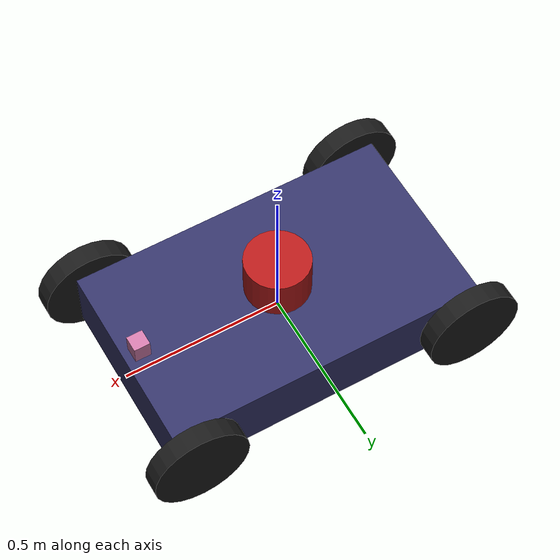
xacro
<?xml version="1.0" ?>
<robot name="robot" xmlns:xacro="http://www.ros.org/wiki/xacro">
    <xacro:include filename="$(find robot_project)/urdf/gazebo.xacro" />
    <!-- Parameters -->
    <xacro:property name="chassis_mass" value="10" />

    <xacro:property name="radius_wheel" value="0.15" />
    <xacro:property name="length_wheel" value="0.06" />

    <xacro:property name="radius_cylinder_wheel" value="0.04" />
    <xacro:property name="length_cylinder_wheel" value="0.06" />

    <!-- Gazebo tags - Laser scan -->
    <gazebo reference="joint_laser_scan_chassis">
        <preserveFixedJoint>true</preserveFixedJoint>
    </gazebo>
    <gazebo reference="link_laser_scan">
        <material>Gazebo/DarkGrey</material>
    </gazebo>

    <!-- Link - chassis -->
    <link name="link_chassis">
        <inertial>
            <mass value="10" />
            <origin xyz="0 0 0.3" rpy="0 0 0" />
            <inertia ixx="1.5417" ixy="0" ixz="0" iyy="3.467" iyz="0" izz="4.742" />
        </inertial>

        <collision>
            <geometry>
                <box size="1 0.6 0.2" />
            </geometry>
        </collision>

        <visual>
            <geometry>
                <box size="1 0.6 0.2" />
            </geometry>
            <material name="DarkBlue">
                <color rgba="0.2 0.2 0.4 1" />
            </material>
        </visual>
    </link>

    <joint name="joint_chassis_left_back_wheel" type="continuous">
        <origin rpy="0 0 0" xyz="-0.45 0.28 0" />
        <child link="link_left_back_wheel" />
        <parent link="link_chassis" />
        <axis rpy="0 0 0" xyz="0 1 0" />
        <limit effort="10000" velocity="1000" />
        <joint_properties damping="1.0" friction="1.0" />
    </joint>

    <link name="link_left_back_wheel">
        <inertial>
            <mass value="1" />
            <origin xyz="0 0 0" rpy="0 0 0" />
            <inertia ixx="0.002526666666667" ixy="0" ixz="0" iyy="0.002526666666667" iyz="0" izz="0.005"/>
        </inertial>
        <collision>
            <origin rpy="1.5707 0 0" xyz="0 0.06 0" />
            <geometry>
                <cylinder length="${length_wheel}" radius="${radius_wheel}"/>
            </geometry>
        </collision>
        <visual>
            <origin rpy="1.5707 0 0" xyz="0 0.06 0" />
            <geometry>
                <cylinder length="${length_wheel}" radius="${radius_wheel}"/>
            </geometry>
            <material name="Black">
                <color rgba="0.1 0.1 0.1 1" />
            </material>
        </visual>

        <collision>
            <origin rpy="1.5707 0 0" xyz="0 0.05 0" />
            <geometry>
                <cylinder length="${length_cylinder_wheel}" radius="${radius_cylinder_wheel}"/>
            </geometry>
        </collision>
        <visual>
            <origin rpy="1.5707 0 0" xyz="0 0.05 0" />
            <geometry>
                <cylinder length="${length_cylinder_wheel}" radius="${radius_cylinder_wheel}"/>
            </geometry>
            <material name="Black">
                <color rgba="0.1 0.1 0.1 1" />
            </material>
        </visual>
    </link>

    <joint name="joint_chassis_right_back_wheel" type="continuous">
        <origin rpy="0 0 0" xyz="-0.45 -0.28 0" />
        <child link="link_right_back_wheel" />
        <parent link="link_chassis" />
        <axis rpy="0 0 0" xyz="0 1 0" />
        <limit effort="10000" velocity="1000" />
        <joint_properties damping="1.0" friction="1.0" />
    </joint>

    <link name="link_right_back_wheel">
        <inertial>
            <mass value="1" />
            <origin xyz="0 0 0" rpy="0 0 0" />
            <inertia ixx="0.002526666666667" ixy="0" ixz="0" iyy="0.002526666666667" iyz="0" izz="0.005"/>
        </inertial>
        <collision>
            <origin rpy="1.5707 0 0" xyz="0 -0.06 0" />
            <geometry>
                <cylinder length="${length_wheel}" radius="${radius_wheel}"/>
            </geometry>
        </collision>
        <visual>
            <origin rpy="1.5707 0 0" xyz="0 -0.06 0" />
            <geometry>
                <cylinder length="${length_wheel}" radius="${radius_wheel}"/>
            </geometry>
            <material name="Black">
                <color rgba="0.1 0.1 0.1 1" />
            </material>
        </visual>

        <collision>
            <origin rpy="1.5707 0 0" xyz="0 -0.05 0" />
            <geometry>
                <cylinder length="${length_cylinder_wheel}" radius="${radius_cylinder_wheel}"/>
            </geometry>
        </collision>
        <visual>
            <origin rpy="1.5707 0 0" xyz="0 -0.05 0" />
            <geometry>
                <cylinder length="${length_cylinder_wheel}" radius="${radius_cylinder_wheel}"/>
            </geometry>
            <material name="Black">
                <color rgba="0.1 0.1 0.1 1" />
            </material>
        </visual>
    </link>

    <joint name="joint_chassis_left_front_wheel" type="continuous">
        <origin rpy="0 0 0" xyz="0.45 0.28 0" />
        <child link="link_left_front_wheel" />
        <parent link="link_chassis" />
        <axis rpy="0 0 0" xyz="0 1 0" />
        <limit effort="10000" velocity="1000" />
        <joint_properties damping="1.0" friction="1.0" />
    </joint>

    <link name="link_left_front_wheel">
        <inertial>
            <mass value="1" />
            <origin xyz="0 0 0" rpy="0 0 0" />
            <inertia ixx="0.002526666666667" ixy="0" ixz="0" iyy="0.002526666666667" iyz="0" izz="0.005"/>
        </inertial>
        <collision>
            <origin rpy="1.5707 0 0" xyz="0 0.06 0" />
            <geometry>
                <cylinder length="${length_wheel}" radius="${radius_wheel}"/>
            </geometry>
        </collision>
        <visual>
            <origin rpy="1.5707 0 0" xyz="0 0.06 0" />
            <geometry>
                <cylinder length="${length_wheel}" radius="${radius_wheel}"/>
            </geometry>
            <material name="Black">
                <color rgba="0.1 0.1 0.1 1" />
            </material>
        </visual>

        <collision>
            <origin rpy="1.5707 0 0" xyz="0 0.05 0" />
            <geometry>
                <cylinder length="${length_cylinder_wheel}" radius="${radius_cylinder_wheel}"/>
            </geometry>
        </collision>
        <visual>
            <origin rpy="1.5707 0 0" xyz="0 0.05 0" />
            <geometry>
                <cylinder length="${length_cylinder_wheel}" radius="${radius_cylinder_wheel}"/>
            </geometry>
            <material name="Black">
                <color rgba="0.1 0.1 0.1 1" />
            </material>
        </visual>
    </link>

    <joint name="joint_chassis_right_front_wheel" type="continuous">
        <origin rpy="0 0 0" xyz="0.45 -0.28 0" />
        <child link="link_right_front_wheel" />
        <parent link="link_chassis" />
        <axis rpy="0 0 0" xyz="0 1 0" />
        <limit effort="10000" velocity="1000" />
        <joint_properties damping="1.0" friction="1.0" />
    </joint>

    <link name="link_right_front_wheel">
        <inertial>
            <mass value="1" />
            <origin xyz="0 0 0" rpy="0 0 0" />
            <inertia ixx="0.002526666666667" ixy="0" ixz="0" iyy="0.002526666666667" iyz="0" izz="0.005"/>
        </inertial>
        <collision>
            <origin rpy="1.5707 0 0" xyz="0 -0.06 0" />
            <geometry>
                <cylinder length="${length_wheel}" radius="${radius_wheel}"/>
            </geometry>
        </collision>
        <visual>
            <origin rpy="1.5707 0 0" xyz="0 -0.06 0" />
            <geometry>
                <cylinder length="${length_wheel}" radius="${radius_wheel}"/>
            </geometry>
            <material name="Black">
                <color rgba="0.1 0.1 0.1 1" />
            </material>
        </visual>

        <collision>
            <origin rpy="1.5707 0 0" xyz="0 -0.05 0" />
            <geometry>
                <cylinder length="${length_cylinder_wheel}" radius="${radius_cylinder_wheel}"/>
            </geometry>
        </collision>
        <visual>
            <origin rpy="1.5707 0 0" xyz="0 -0.05 0" />
            <geometry>
                <cylinder length="${length_cylinder_wheel}" radius="${radius_cylinder_wheel}"/>
            </geometry>
            <material name="Black">
                <color rgba="0.1 0.1 0.1 1" />
            </material>
        </visual>
    </link>

    <!-- Laser scan -->
    <joint name="joint_laser_scan_chassis" type="fixed">
        <origin rpy="0 0 0" xyz="0 0 0.16" />
        <child link="link_laser_scan" />
        <parent link="link_chassis" />
        <joint_properties damping="1.0" friction="1.0" />
    </joint>

    <link name="link_laser_scan">
        <inertial>
            <origin xyz="0 0 0" rpy="0 0 0" />
            <mass value="0.5" />
            <inertia ixx="0.000252666666667" ixy="0" ixz="0" iyy="0.000252666666667" iyz="0" izz="0.0005"/>
        </inertial>
        <visual>
            <origin xyz="0 0 0" rpy="0 0 0" />
            <geometry>
                <cylinder radius="0.1" length="0.15"/>
            </geometry>
            <material name="Red">
                <color rgba="0.7 0.1 0.1 1" />
            </material>
        </visual>
        <collision>
            <origin xyz="0 0 0" rpy="0 0 0"/>
            <geometry>
                <cylinder radius="0.1" length="0.15"/>
            </geometry>
        </collision>
    </link>

    <!-- Camera -->
    <joint name="camera_joint" type="fixed">
        <parent link="link_chassis"/>
        <child link="camera_link"/>
        <origin xyz="0.45 0 0.13" rpy="0 0 0"/>
    </joint>

    <link name="camera_link">
        <visual>
            <geometry>
                <box size="0.05 0.05 0.06"/>
            </geometry>
        </visual>
    </link>
</robot>
